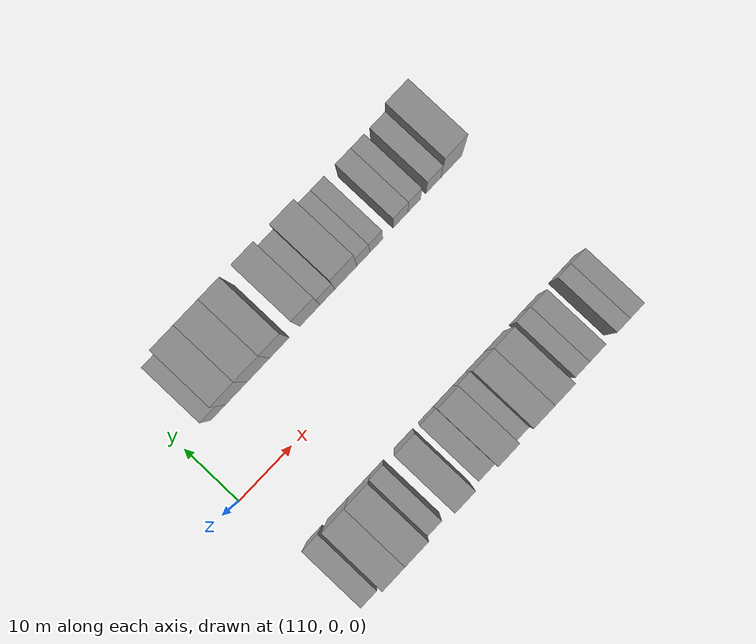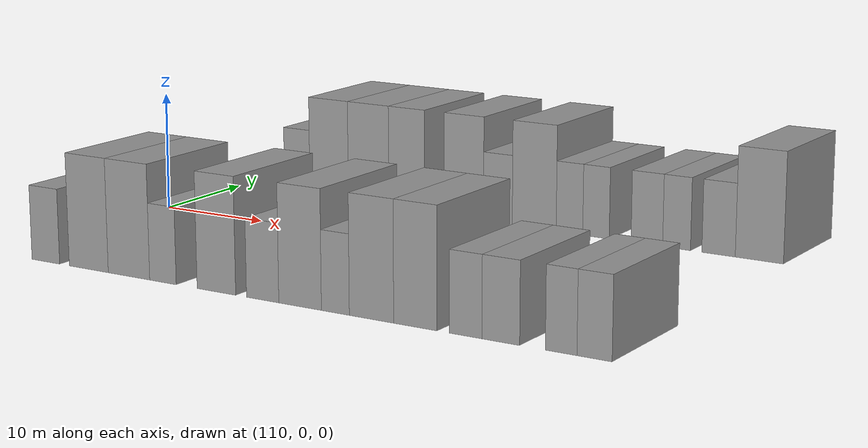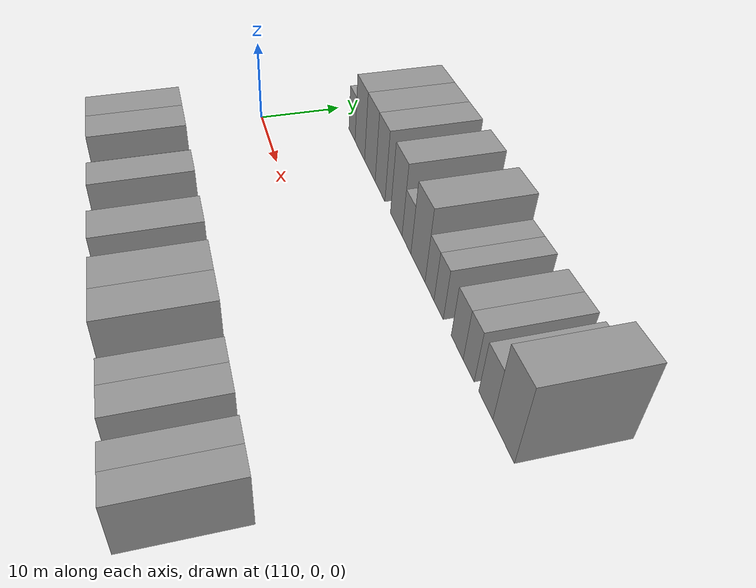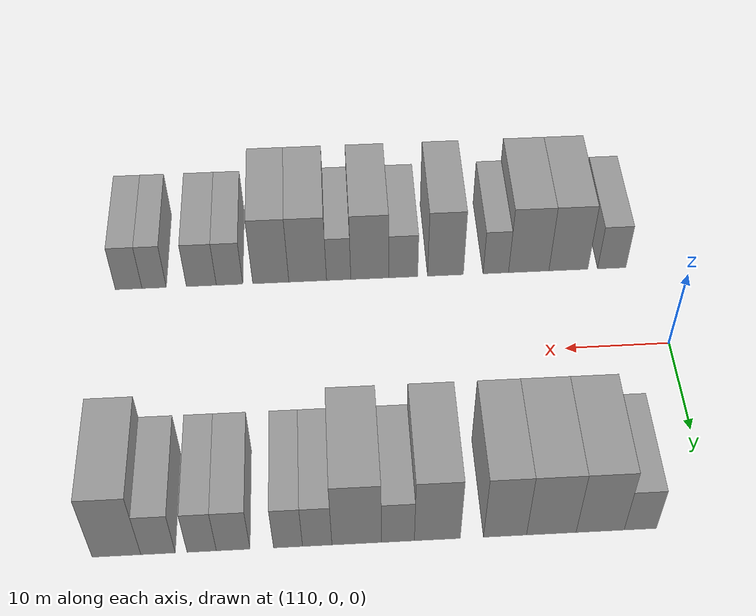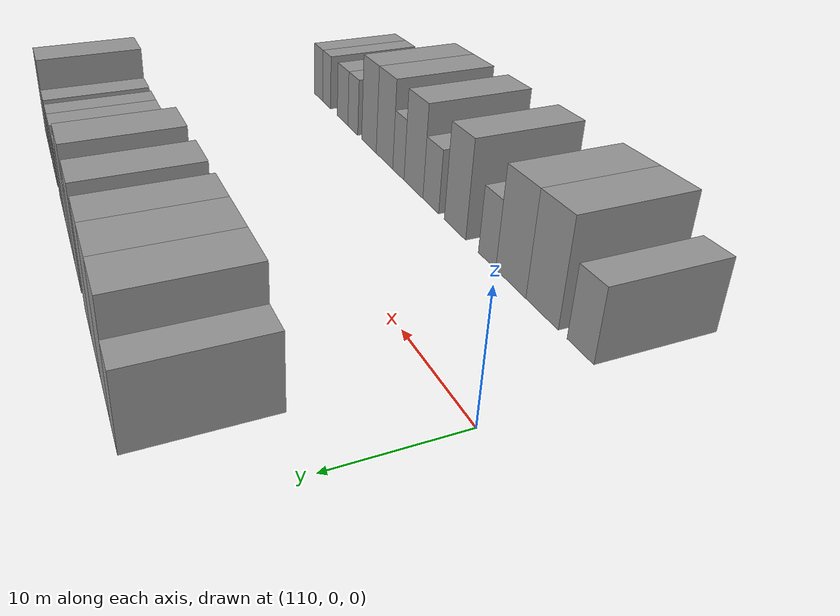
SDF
<sdf version="1.6">
 <world name="default">
  <model name="building_29">
   <static>1</static>
   <pose>116.5231 15.0000 0 0.000000 0.000000 1.570796</pose>
   <link name="link">
    <pose>0 0 3.00 0 0 0</pose>
    <collision name="collision"><geometry><box><size>10.0000 2.7981 6.0000</size></box></geometry></collision>
    <visual name="visual">
     <cast_shadows>0</cast_shadows>
     <geometry><box><size>10.0000 2.7981 6.0000</size></box></geometry>
     <material>
      <script>
       <uri>model://grey_wall/materials/scripts</uri>
       <uri>model://grey_wall/materials/textures</uri>
       <name>vrc/grey_wall</name>
      </script>
     </material>
    </visual>
   </link>
  </model>
  <model name="building_30">
   <static>1</static>
   <pose>120.0027 15.0000 0 0.000000 0.000000 1.570796</pose>
   <link name="link">
    <pose>0 0 4.50 0 0 0</pose>
    <collision name="collision"><geometry><box><size>10.0000 4.1611 9.0000</size></box></geometry></collision>
    <visual name="visual">
     <cast_shadows>0</cast_shadows>
     <geometry><box><size>10.0000 4.1611 9.0000</size></box></geometry>
     <material>
      <script>
       <uri>model://grey_wall/materials/scripts</uri>
       <uri>model://grey_wall/materials/textures</uri>
       <name>vrc/grey_wall</name>
      </script>
     </material>
    </visual>
   </link>
  </model>
  <model name="building_31">
   <static>1</static>
   <pose>124.2219 15.0000 0 0.000000 0.000000 1.570796</pose>
   <link name="link">
    <pose>0 0 4.50 0 0 0</pose>
    <collision name="collision"><geometry><box><size>10.0000 4.2773 9.0000</size></box></geometry></collision>
    <visual name="visual">
     <cast_shadows>0</cast_shadows>
     <geometry><box><size>10.0000 4.2773 9.0000</size></box></geometry>
     <material>
      <script>
       <uri>model://grey_wall/materials/scripts</uri>
       <uri>model://grey_wall/materials/textures</uri>
       <name>vrc/grey_wall</name>
      </script>
     </material>
    </visual>
   </link>
  </model>
  <model name="building_32">
   <static>1</static>
   <pose>128.2122 15.0000 0 0.000000 0.000000 1.570796</pose>
   <link name="link">
    <pose>0 0 4.50 0 0 0</pose>
    <collision name="collision"><geometry><box><size>10.0000 3.7033 9.0000</size></box></geometry></collision>
    <visual name="visual">
     <cast_shadows>0</cast_shadows>
     <geometry><box><size>10.0000 3.7033 9.0000</size></box></geometry>
     <material>
      <script>
       <uri>model://grey_wall/materials/scripts</uri>
       <uri>model://grey_wall/materials/textures</uri>
       <name>vrc/grey_wall</name>
      </script>
     </material>
    </visual>
   </link>
  </model>
  <model name="building_33">
   <static>1</static>
   <pose>134.0281 15.0000 0 0.000000 0.000000 1.570796</pose>
   <link name="link">
    <pose>0 0 4.50 0 0 0</pose>
    <collision name="collision"><geometry><box><size>10.0000 3.9285 9.0000</size></box></geometry></collision>
    <visual name="visual">
     <cast_shadows>0</cast_shadows>
     <geometry><box><size>10.0000 3.9285 9.0000</size></box></geometry>
     <material>
      <script>
       <uri>model://grey_wall/materials/scripts</uri>
       <uri>model://grey_wall/materials/textures</uri>
       <name>vrc/grey_wall</name>
      </script>
     </material>
    </visual>
   </link>
  </model>
  <model name="building_34">
   <static>1</static>
   <pose>137.4024 15.0000 0 0.000000 0.000000 1.570796</pose>
   <link name="link">
    <pose>0 0 3.00 0 0 0</pose>
    <collision name="collision"><geometry><box><size>10.0000 2.8201 6.0000</size></box></geometry></collision>
    <visual name="visual">
     <cast_shadows>0</cast_shadows>
     <geometry><box><size>10.0000 2.8201 6.0000</size></box></geometry>
     <material>
      <script>
       <uri>model://grey_wall/materials/scripts</uri>
       <uri>model://grey_wall/materials/textures</uri>
       <name>vrc/grey_wall</name>
      </script>
     </material>
    </visual>
   </link>
  </model>
  <model name="building_35">
   <static>1</static>
   <pose>140.9218 15.0000 0 0.000000 0.000000 1.570796</pose>
   <link name="link">
    <pose>0 0 4.50 0 0 0</pose>
    <collision name="collision"><geometry><box><size>10.0000 4.2188 9.0000</size></box></geometry></collision>
    <visual name="visual">
     <cast_shadows>0</cast_shadows>
     <geometry><box><size>10.0000 4.2188 9.0000</size></box></geometry>
     <material>
      <script>
       <uri>model://grey_wall/materials/scripts</uri>
       <uri>model://grey_wall/materials/textures</uri>
       <name>vrc/grey_wall</name>
      </script>
     </material>
    </visual>
   </link>
  </model>
  <model name="building_36">
   <static>1</static>
   <pose>144.2823 15.0000 0 0.000000 0.000000 1.570796</pose>
   <link name="link">
    <pose>0 0 3.00 0 0 0</pose>
    <collision name="collision"><geometry><box><size>10.0000 2.5022 6.0000</size></box></geometry></collision>
    <visual name="visual">
     <cast_shadows>0</cast_shadows>
     <geometry><box><size>10.0000 2.5022 6.0000</size></box></geometry>
     <material>
      <script>
       <uri>model://grey_wall/materials/scripts</uri>
       <uri>model://grey_wall/materials/textures</uri>
       <name>vrc/grey_wall</name>
      </script>
     </material>
    </visual>
   </link>
  </model>
  <model name="building_37">
   <static>1</static>
   <pose>146.7636 15.0000 0 0.000000 0.000000 1.570796</pose>
   <link name="link">
    <pose>0 0 3.00 0 0 0</pose>
    <collision name="collision"><geometry><box><size>10.0000 2.4604 6.0000</size></box></geometry></collision>
    <visual name="visual">
     <cast_shadows>0</cast_shadows>
     <geometry><box><size>10.0000 2.4604 6.0000</size></box></geometry>
     <material>
      <script>
       <uri>model://grey_wall/materials/scripts</uri>
       <uri>model://grey_wall/materials/textures</uri>
       <name>vrc/grey_wall</name>
      </script>
     </material>
    </visual>
   </link>
  </model>
  <model name="building_38">
   <static>1</static>
   <pose>151.4189 15.0000 0 0.000000 0.000000 1.570796</pose>
   <link name="link">
    <pose>0 0 3.00 0 0 0</pose>
    <collision name="collision"><geometry><box><size>10.0000 2.8504 6.0000</size></box></geometry></collision>
    <visual name="visual">
     <cast_shadows>0</cast_shadows>
     <geometry><box><size>10.0000 2.8504 6.0000</size></box></geometry>
     <material>
      <script>
       <uri>model://grey_wall/materials/scripts</uri>
       <uri>model://grey_wall/materials/textures</uri>
       <name>vrc/grey_wall</name>
      </script>
     </material>
    </visual>
   </link>
  </model>
  <model name="building_39">
   <static>1</static>
   <pose>154.0806 15.0000 0 0.000000 0.000000 1.570796</pose>
   <link name="link">
    <pose>0 0 3.00 0 0 0</pose>
    <collision name="collision"><geometry><box><size>10.0000 2.4729 6.0000</size></box></geometry></collision>
    <visual name="visual">
     <cast_shadows>0</cast_shadows>
     <geometry><box><size>10.0000 2.4729 6.0000</size></box></geometry>
     <material>
      <script>
       <uri>model://grey_wall/materials/scripts</uri>
       <uri>model://grey_wall/materials/textures</uri>
       <name>vrc/grey_wall</name>
      </script>
     </material>
    </visual>
   </link>
  </model>
  <model name="building_40">
   <static>1</static>
   <pose>157.7672 15.0000 0 0.000000 0.000000 1.570796</pose>
   <link name="link">
    <pose>0 0 3.00 0 0 0</pose>
    <collision name="collision"><geometry><box><size>10.0000 2.9003 6.0000</size></box></geometry></collision>
    <visual name="visual">
     <cast_shadows>0</cast_shadows>
     <geometry><box><size>10.0000 2.9003 6.0000</size></box></geometry>
     <material>
      <script>
       <uri>model://grey_wall/materials/scripts</uri>
       <uri>model://grey_wall/materials/textures</uri>
       <name>vrc/grey_wall</name>
      </script>
     </material>
    </visual>
   </link>
  </model>
  <model name="building_41">
   <static>1</static>
   <pose>161.2655 15.0000 0 0.000000 0.000000 1.570796</pose>
   <link name="link">
    <pose>0 0 4.50 0 0 0</pose>
    <collision name="collision"><geometry><box><size>10.0000 4.0963 9.0000</size></box></geometry></collision>
    <visual name="visual">
     <cast_shadows>0</cast_shadows>
     <geometry><box><size>10.0000 4.0963 9.0000</size></box></geometry>
     <material>
      <script>
       <uri>model://grey_wall/materials/scripts</uri>
       <uri>model://grey_wall/materials/textures</uri>
       <name>vrc/grey_wall</name>
      </script>
     </material>
    </visual>
   </link>
  </model>
  <model name="building_83">
   <static>1</static>
   <pose>113.8190 -15.0000 0 0.000000 0.000000 1.570796</pose>
   <link name="link">
    <pose>0 0 3.00 0 0 0</pose>
    <collision name="collision"><geometry><box><size>10.0000 2.8850 6.0000</size></box></geometry></collision>
    <visual name="visual">
     <cast_shadows>0</cast_shadows>
     <geometry><box><size>10.0000 2.8850 6.0000</size></box></geometry>
     <material>
      <script>
       <uri>model://grey_wall/materials/scripts</uri>
       <uri>model://grey_wall/materials/textures</uri>
       <name>vrc/grey_wall</name>
      </script>
     </material>
    </visual>
   </link>
  </model>
  <model name="building_84">
   <static>1</static>
   <pose>118.2429 -15.0000 0 0.000000 0.000000 1.570796</pose>
   <link name="link">
    <pose>0 0 4.50 0 0 0</pose>
    <collision name="collision"><geometry><box><size>10.0000 3.9629 9.0000</size></box></geometry></collision>
    <visual name="visual">
     <cast_shadows>0</cast_shadows>
     <geometry><box><size>10.0000 3.9629 9.0000</size></box></geometry>
     <material>
      <script>
       <uri>model://grey_wall/materials/scripts</uri>
       <uri>model://grey_wall/materials/textures</uri>
       <name>vrc/grey_wall</name>
      </script>
     </material>
    </visual>
   </link>
  </model>
  <model name="building_85">
   <static>1</static>
   <pose>122.2781 -15.0000 0 0.000000 0.000000 1.570796</pose>
   <link name="link">
    <pose>0 0 4.50 0 0 0</pose>
    <collision name="collision"><geometry><box><size>10.0000 4.1075 9.0000</size></box></geometry></collision>
    <visual name="visual">
     <cast_shadows>0</cast_shadows>
     <geometry><box><size>10.0000 4.1075 9.0000</size></box></geometry>
     <material>
      <script>
       <uri>model://grey_wall/materials/scripts</uri>
       <uri>model://grey_wall/materials/textures</uri>
       <name>vrc/grey_wall</name>
      </script>
     </material>
    </visual>
   </link>
  </model>
  <model name="building_86">
   <static>1</static>
   <pose>125.6180 -15.0000 0 0.000000 0.000000 1.570796</pose>
   <link name="link">
    <pose>0 0 3.00 0 0 0</pose>
    <collision name="collision"><geometry><box><size>10.0000 2.5723 6.0000</size></box></geometry></collision>
    <visual name="visual">
     <cast_shadows>0</cast_shadows>
     <geometry><box><size>10.0000 2.5723 6.0000</size></box></geometry>
     <material>
      <script>
       <uri>model://grey_wall/materials/scripts</uri>
       <uri>model://grey_wall/materials/textures</uri>
       <name>vrc/grey_wall</name>
      </script>
     </material>
    </visual>
   </link>
  </model>
  <model name="building_87">
   <static>1</static>
   <pose>130.7125 -15.0000 0 0.000000 0.000000 1.570796</pose>
   <link name="link">
    <pose>0 0 4.50 0 0 0</pose>
    <collision name="collision"><geometry><box><size>10.0000 3.6168 9.0000</size></box></geometry></collision>
    <visual name="visual">
     <cast_shadows>0</cast_shadows>
     <geometry><box><size>10.0000 3.6168 9.0000</size></box></geometry>
     <material>
      <script>
       <uri>model://grey_wall/materials/scripts</uri>
       <uri>model://grey_wall/materials/textures</uri>
       <name>vrc/grey_wall</name>
      </script>
     </material>
    </visual>
   </link>
  </model>
  <model name="building_88">
   <static>1</static>
   <pose>134.9914 -15.0000 0 0.000000 0.000000 1.570796</pose>
   <link name="link">
    <pose>0 0 3.00 0 0 0</pose>
    <collision name="collision"><geometry><box><size>10.0000 2.9410 6.0000</size></box></geometry></collision>
    <visual name="visual">
     <cast_shadows>0</cast_shadows>
     <geometry><box><size>10.0000 2.9410 6.0000</size></box></geometry>
     <material>
      <script>
       <uri>model://grey_wall/materials/scripts</uri>
       <uri>model://grey_wall/materials/textures</uri>
       <name>vrc/grey_wall</name>
      </script>
     </material>
    </visual>
   </link>
  </model>
  <model name="building_89">
   <static>1</static>
   <pose>138.3607 -15.0000 0 0.000000 0.000000 1.570796</pose>
   <link name="link">
    <pose>0 0 4.50 0 0 0</pose>
    <collision name="collision"><geometry><box><size>10.0000 3.7976 9.0000</size></box></geometry></collision>
    <visual name="visual">
     <cast_shadows>0</cast_shadows>
     <geometry><box><size>10.0000 3.7976 9.0000</size></box></geometry>
     <material>
      <script>
       <uri>model://grey_wall/materials/scripts</uri>
       <uri>model://grey_wall/materials/textures</uri>
       <name>vrc/grey_wall</name>
      </script>
     </material>
    </visual>
   </link>
  </model>
  <model name="building_90">
   <static>1</static>
   <pose>141.4771 -15.0000 0 0.000000 0.000000 1.570796</pose>
   <link name="link">
    <pose>0 0 3.00 0 0 0</pose>
    <collision name="collision"><geometry><box><size>10.0000 2.4353 6.0000</size></box></geometry></collision>
    <visual name="visual">
     <cast_shadows>0</cast_shadows>
     <geometry><box><size>10.0000 2.4353 6.0000</size></box></geometry>
     <material>
      <script>
       <uri>model://grey_wall/materials/scripts</uri>
       <uri>model://grey_wall/materials/textures</uri>
       <name>vrc/grey_wall</name>
      </script>
     </material>
    </visual>
   </link>
  </model>
  <model name="building_91">
   <static>1</static>
   <pose>144.5871 -15.0000 0 0.000000 0.000000 1.570796</pose>
   <link name="link">
    <pose>0 0 4.50 0 0 0</pose>
    <collision name="collision"><geometry><box><size>10.0000 3.7846 9.0000</size></box></geometry></collision>
    <visual name="visual">
     <cast_shadows>0</cast_shadows>
     <geometry><box><size>10.0000 3.7846 9.0000</size></box></geometry>
     <material>
      <script>
       <uri>model://grey_wall/materials/scripts</uri>
       <uri>model://grey_wall/materials/textures</uri>
       <name>vrc/grey_wall</name>
      </script>
     </material>
    </visual>
   </link>
  </model>
  <model name="building_92">
   <static>1</static>
   <pose>148.2839 -15.0000 0 0.000000 0.000000 1.570796</pose>
   <link name="link">
    <pose>0 0 4.50 0 0 0</pose>
    <collision name="collision"><geometry><box><size>10.0000 3.6091 9.0000</size></box></geometry></collision>
    <visual name="visual">
     <cast_shadows>0</cast_shadows>
     <geometry><box><size>10.0000 3.6091 9.0000</size></box></geometry>
     <material>
      <script>
       <uri>model://grey_wall/materials/scripts</uri>
       <uri>model://grey_wall/materials/textures</uri>
       <name>vrc/grey_wall</name>
      </script>
     </material>
    </visual>
   </link>
  </model>
  <model name="building_93">
   <static>1</static>
   <pose>152.4093 -15.0000 0 0.000000 0.000000 1.570796</pose>
   <link name="link">
    <pose>0 0 3.00 0 0 0</pose>
    <collision name="collision"><geometry><box><size>10.0000 2.6416 6.0000</size></box></geometry></collision>
    <visual name="visual">
     <cast_shadows>0</cast_shadows>
     <geometry><box><size>10.0000 2.6416 6.0000</size></box></geometry>
     <material>
      <script>
       <uri>model://grey_wall/materials/scripts</uri>
       <uri>model://grey_wall/materials/textures</uri>
       <name>vrc/grey_wall</name>
      </script>
     </material>
    </visual>
   </link>
  </model>
  <model name="building_94">
   <static>1</static>
   <pose>155.2237 -15.0000 0 0.000000 0.000000 1.570796</pose>
   <link name="link">
    <pose>0 0 3.00 0 0 0</pose>
    <collision name="collision"><geometry><box><size>10.0000 2.9871 6.0000</size></box></geometry></collision>
    <visual name="visual">
     <cast_shadows>0</cast_shadows>
     <geometry><box><size>10.0000 2.9871 6.0000</size></box></geometry>
     <material>
      <script>
       <uri>model://grey_wall/materials/scripts</uri>
       <uri>model://grey_wall/materials/textures</uri>
       <name>vrc/grey_wall</name>
      </script>
     </material>
    </visual>
   </link>
  </model>
  <model name="building_95">
   <static>1</static>
   <pose>159.9237 -15.0000 0 0.000000 0.000000 1.570796</pose>
   <link name="link">
    <pose>0 0 3.00 0 0 0</pose>
    <collision name="collision"><geometry><box><size>10.0000 2.4131 6.0000</size></box></geometry></collision>
    <visual name="visual">
     <cast_shadows>0</cast_shadows>
     <geometry><box><size>10.0000 2.4131 6.0000</size></box></geometry>
     <material>
      <script>
       <uri>model://grey_wall/materials/scripts</uri>
       <uri>model://grey_wall/materials/textures</uri>
       <name>vrc/grey_wall</name>
      </script>
     </material>
    </visual>
   </link>
  </model>
  <model name="building_96">
   <static>1</static>
   <pose>162.4526 -15.0000 0 0.000000 0.000000 1.570796</pose>
   <link name="link">
    <pose>0 0 3.00 0 0 0</pose>
    <collision name="collision"><geometry><box><size>10.0000 2.6447 6.0000</size></box></geometry></collision>
    <visual name="visual">
     <cast_shadows>0</cast_shadows>
     <geometry><box><size>10.0000 2.6447 6.0000</size></box></geometry>
     <material>
      <script>
       <uri>model://grey_wall/materials/scripts</uri>
       <uri>model://grey_wall/materials/textures</uri>
       <name>vrc/grey_wall</name>
      </script>
     </material>
    </visual>
   </link>
  </model>
 </world>
</sdf>
